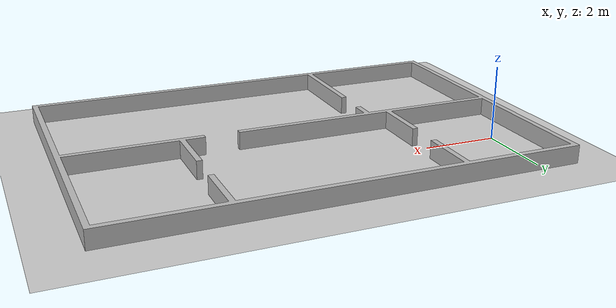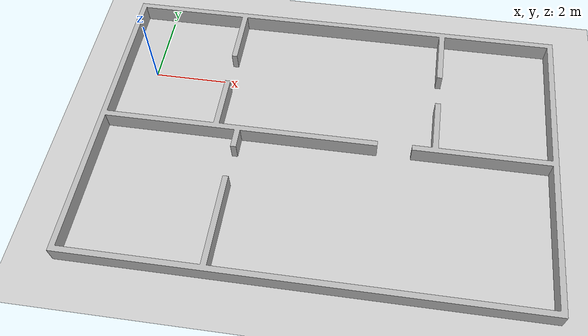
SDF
<?xml version='1.0' encoding='utf-8'?>
  <sdf version='1.6'>
    <world name='default'>
      <include>
        <uri>model://sun</uri>
      </include>

      <model name="house">
        <include>
            <uri>model://house</uri>
        </include>
        <pose frame="">-1 -6 0 0 0 0</pose>
	    </model>

      <model name='ground_plane'>
        <static>1</static>
        <link name='link'>
          <mu1>0.0</mu1>
          <mu2>0.0</mu2>
          <collision name='collision'>
            <geometry>
              <plane>
                <normal>0 0 1</normal>
                <size>100 100</size>
              </plane>
            </geometry>
            <surface>
              <friction>
                <ode>
                  <mu>0</mu>
                  <mu2>0</mu2>
                </ode>
                <torsional>
                  <ode/>
                </torsional>
              </friction>
              <contact>
                <ode/>
              </contact>
              <bounce/>
            </surface>
            <max_contacts>10</max_contacts>
          </collision>
          <visual name='visual'>
            <cast_shadows>0</cast_shadows>
            <geometry>
              <plane>
                <normal>0 0 1</normal>
                <size>100 100</size>
              </plane>
            </geometry>
            <material>
              <script>
                <uri>file://media/materials/scripts/gazebo.material</uri>
                <name>Gazebo/Grey</name>
              </script>
            </material>
          </visual>
          <self_collide>0</self_collide>
          <enable_wind>0</enable_wind>
          <kinematic>0</kinematic>
        </link>
      </model>

      <gui fullscreen='0'>
        <camera name='user_camera'>
          <pose>4.99689 -3.44581 19.3736 3.14159 1.57079 3.14159</pose>
          <view_controller>ortho</view_controller>
          <projection_type>orthographic</projection_type>
        </camera>
      </gui>

      <gui fullscreen='0'>
        <camera name='user_camera'>
          <pose frame=''>1.75 2.55 20 0 1.37 0</pose>
          <view_controller>orbit</view_controller>
          <projection_type>perspective</projection_type>
        </camera>
      </gui>

    </world>
  </sdf>

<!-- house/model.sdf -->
<sdf version="1.5">
  <model name="house">
    <pose>0 0 0 0 0 0</pose>
    <static>true</static>
    <link name="body">
      <visual name="visual">
        <geometry>
          <mesh><uri>file://models/house/meshes/house.dae</uri></mesh>
        </geometry>
      </visual>
      <mu1>0.0</mu1>
      <mu2>0.0</mu2>
      <collision name="collision">
        <geometry>
          <mesh><uri>file://models/house/meshes/house.dae</uri></mesh>
        </geometry>
        <surface>
          <contact>
            <ode/>
          </contact>
          <bounce/>
          <friction>
            <ode>
              <mu>0</mu>
              <mu2>0</mu2>
            </ode>
            <torsional>
              <ode/>
            </torsional>
            <ode/>
          </friction>
        </surface>
      </collision>
    </link>
  </model>
</sdf>
